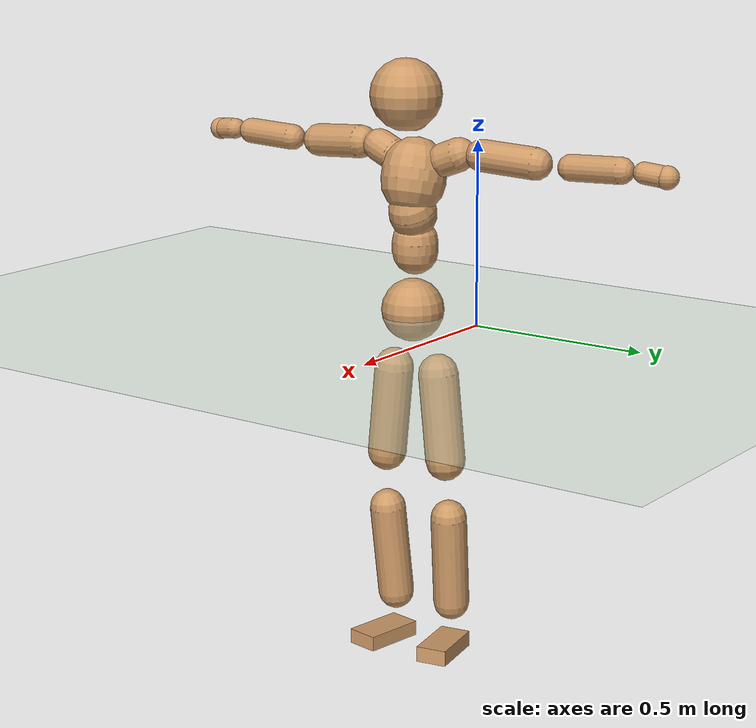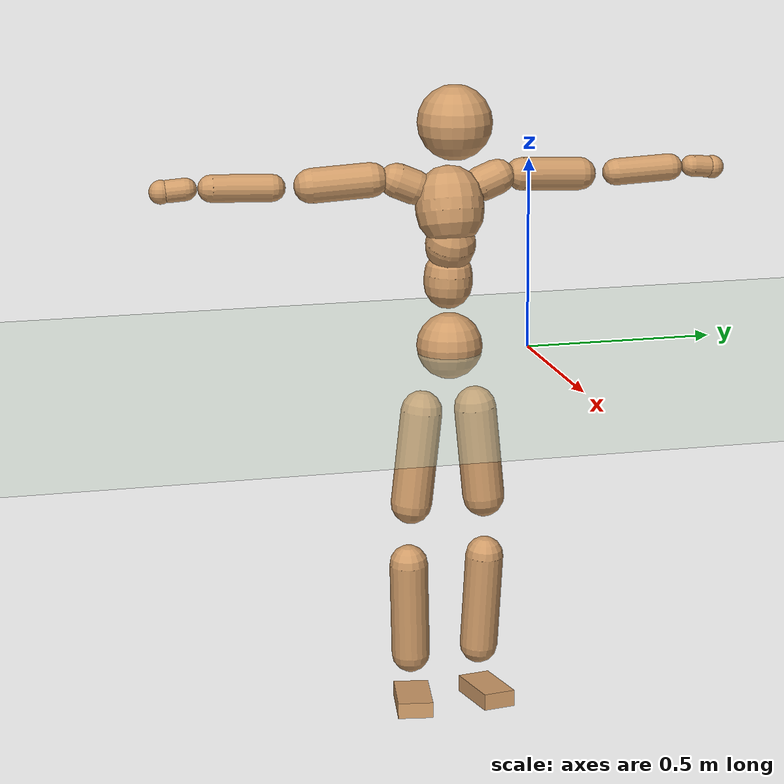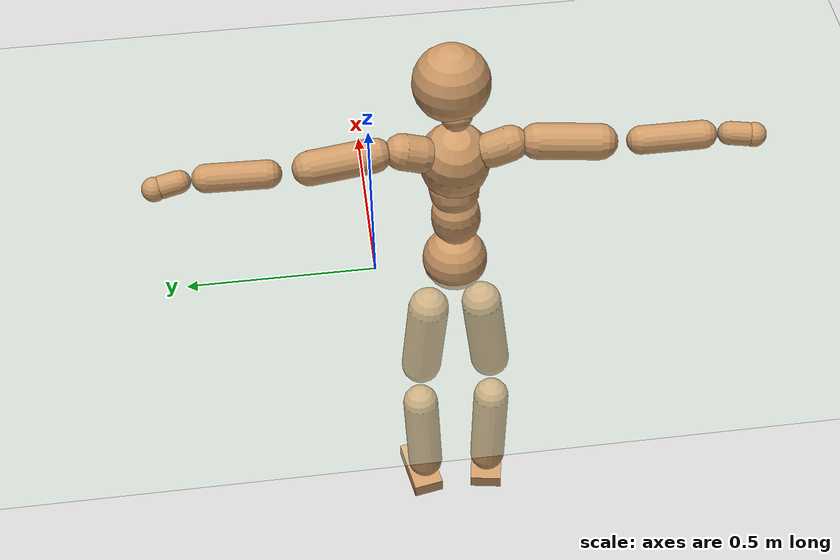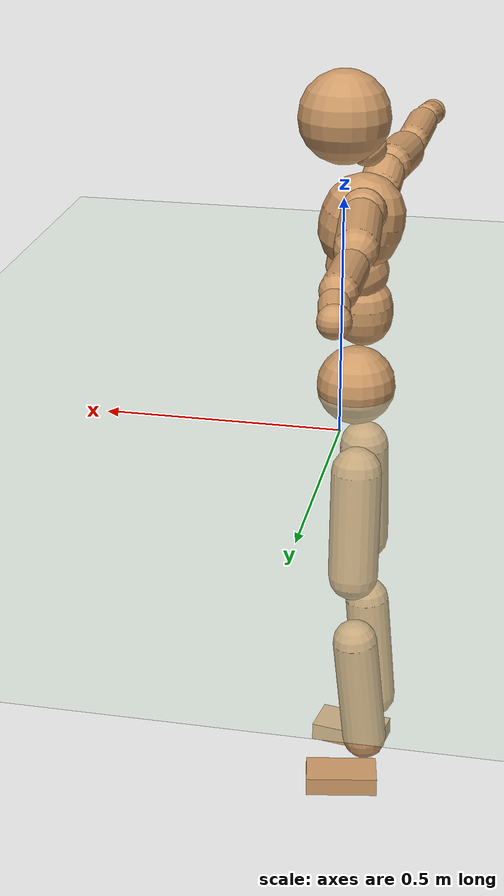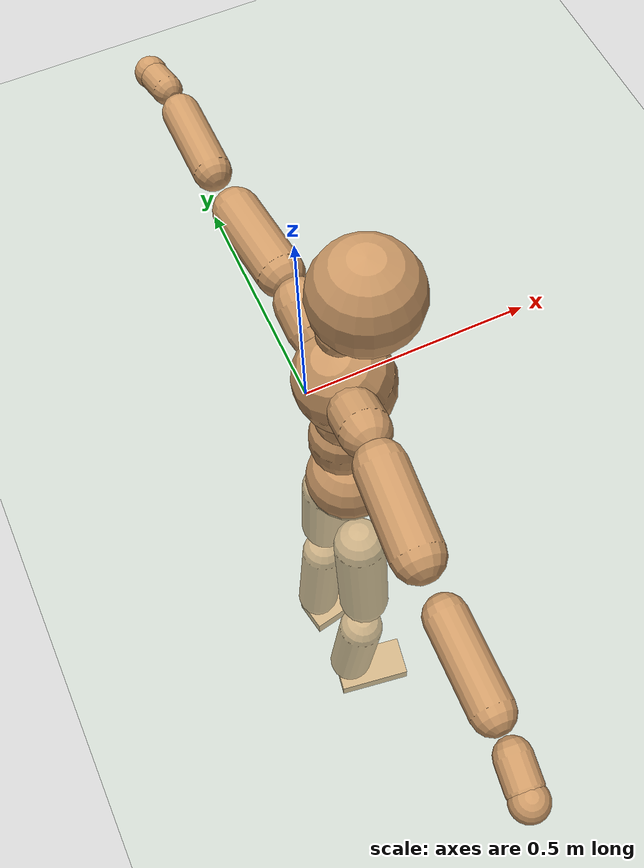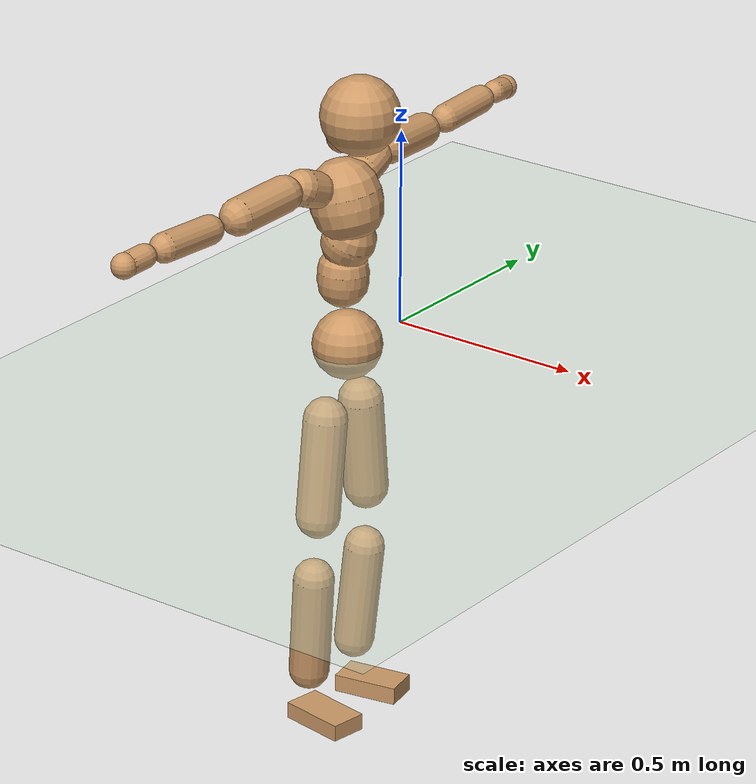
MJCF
<mujoco model="humanoid">
  <compiler coordinate="local" angle="radian"/>
  <default>
    <joint damping="0.0" armature="0.01" stiffness="0.0" limited="true"/>
    <geom conaffinity="1" condim="3" contype="7" margin="0.001" rgba="0.8 0.6 .4 1"/>
  </default>
  <asset>
    <texture type="skybox" builtin="gradient" rgb1=".4 .5 .6" rgb2="0 0 0" width="100" height="100"/>
    <texture builtin="flat" height="1278" mark="cross" markrgb="1 1 1" name="texgeom" random="0.01" rgb1="0.8 0.6 0.4" rgb2="0.8 0.6 0.4" type="cube" width="127"/>
    <texture builtin="checker" height="100" name="texplane" rgb1="0 0 0" rgb2="0.8 0.8 0.8" type="2d" width="100"/>
    <material name="MatPlane" reflectance="0.5" shininess="1" specular="1" texrepeat="60 60" texture="texplane"/>
    <material name="geom" texture="texgeom" texuniform="true"/>
  </asset>
  <worldbody>
    <light cutoff="100" diffuse="1 1 1" dir="-0 0 -1.3" directional="true" exponent="1" pos="0 0 1.3" specular=".1 .1 .1"/>
    <geom conaffinity="1" condim="3" name="floor" pos="0 0 0" rgba="0.8 0.9 0.8 1" size="100 100 .2" type="plane" material="MatPlane"/>
    <body name="Pelvis" pos="-0.0012 -0.2134 0.015">
      <freejoint name="Pelvis"/>
      <geom type="sphere" contype="1" conaffinity="1" density="500" size="0.0867" pos="0.0000 0.0000 0.0000" name="Pelvis"/>
      <body name="L_Hip" pos="-0.0159 0.0663 -0.0932">
        <joint name="L_Hip_x" type="hinge" pos="0 0 0" axis="1 0 0" stiffness="800" damping="80" armature="0.02" range="-180.0000 180.0000"/>
        <joint name="L_Hip_y" type="hinge" pos="0 0 0" axis="0 1 0" stiffness="800" damping="80" armature="0.02" range="-180.0000 180.0000"/>
        <joint name="L_Hip_z" type="hinge" pos="0 0 0" axis="0 0 1" stiffness="800" damping="80" armature="0.02" range="-180.0000 180.0000"/>
        <geom type="capsule" contype="1" conaffinity="1" density="500" fromto="-0.0003 0.0079 -0.0820 -0.0014 0.0317 -0.3282" size="0.0556" name="L_Hip"/>
        <body name="L_Knee" pos="-0.0017 0.0397 -0.4102">
          <joint name="L_Knee_x" type="hinge" pos="0 0 0" axis="1 0 0" stiffness="800" damping="80" armature="0.02" range="-180.0000 180.0000"/>
          <joint name="L_Knee_y" type="hinge" pos="0 0 0" axis="0 1 0" stiffness="800" damping="80" armature="0.02" range="-180.0000 180.0000"/>
          <joint name="L_Knee_z" type="hinge" pos="0 0 0" axis="0 0 1" stiffness="800" damping="80" armature="0.02" range="-180.0000 180.0000"/>
          <geom type="capsule" contype="1" conaffinity="1" density="500" fromto="-0.0088 -0.0027 -0.0870 -0.0351 -0.0109 -0.3481" size="0.0506" name="L_Knee"/>
          <body name="L_Ankle" pos="-0.0439 -0.0136 -0.4352">
            <joint name="L_Ankle_x" type="hinge" pos="0 0 0" axis="1 0 0" stiffness="800" damping="80" armature="0.02" range="-180.0000 180.0000"/>
            <joint name="L_Ankle_y" type="hinge" pos="0 0 0" axis="0 1 0" stiffness="800" damping="80" armature="0.02" range="-180.0000 180.0000"/>
            <joint name="L_Ankle_z" type="hinge" pos="0 0 0" axis="0 0 1" stiffness="800" damping="80" armature="0.02" range="-180.0000 180.0000"/>
            <geom type="box" contype="1" conaffinity="1" density="500" pos="0.0603 0.0109 -0.0302" size="0.0829 0.0437 0.0222" quat="0.9960 0.0000 0.0000 0.0890" name="L_Ankle"/>
            <body name="L_Toe" pos="0.1205 0.0217 -0.0604">
              <joint name="L_Toe_x" type="hinge" pos="0 0 0" axis="1 0 0" stiffness="500" damping="50" armature="0.02" range="-180.0000 180.0000"/>
              <joint name="L_Toe_y" type="hinge" pos="0 0 0" axis="0 1 0" stiffness="500" damping="50" armature="0.02" range="-180.0000 180.0000"/>
              <joint name="L_Toe_z" type="hinge" pos="0 0 0" axis="0 0 1" stiffness="500" damping="50" armature="0.02" range="-180.0000 180.0000"/>
              <geom type="box" contype="1" conaffinity="1" density="500" pos="0.0000 0.0000 0.0295" size="0.0009 0.0022 0.0011" quat="0.9954 0.0000 0.0000 0.0954" name="L_Toe"/>
            </body>
          </body>
        </body>
      </body>
      <body name="R_Hip" pos="-0.0106 -0.0635 -0.0923">
        <joint name="R_Hip_x" type="hinge" pos="0 0 0" axis="1 0 0" stiffness="800" damping="80" armature="0.02" range="-180.0000 180.0000"/>
        <joint name="R_Hip_y" type="hinge" pos="0 0 0" axis="0 1 0" stiffness="800" damping="80" armature="0.02" range="-180.0000 180.0000"/>
        <joint name="R_Hip_z" type="hinge" pos="0 0 0" axis="0 0 1" stiffness="800" damping="80" armature="0.02" range="-180.0000 180.0000"/>
        <geom type="capsule" contype="1" conaffinity="1" density="500" fromto="-0.0009 -0.0093 -0.0837 -0.0036 -0.0370 -0.3347" size="0.0547" name="R_Hip"/>
        <body name="R_Knee" pos="-0.0045 -0.0463 -0.4183">
          <joint name="R_Knee_x" type="hinge" pos="0 0 0" axis="1 0 0" stiffness="800" damping="80" armature="0.02" range="-180.0000 180.0000"/>
          <joint name="R_Knee_y" type="hinge" pos="0 0 0" axis="0 1 0" stiffness="800" damping="80" armature="0.02" range="-180.0000 180.0000"/>
          <joint name="R_Knee_z" type="hinge" pos="0 0 0" axis="0 0 1" stiffness="800" damping="80" armature="0.02" range="-180.0000 180.0000"/>
          <geom type="capsule" contype="1" conaffinity="1" density="500" fromto="-0.0082 0.0035 -0.0871 -0.0327 0.0142 -0.3485" size="0.051" name="R_Knee"/>
          <body name="R_Ankle" pos="-0.0408 0.0177 -0.4357">
            <joint name="R_Ankle_x" type="hinge" pos="0 0 0" axis="1 0 0" stiffness="800" damping="80" armature="0.02" range="-180.0000 180.0000"/>
            <joint name="R_Ankle_y" type="hinge" pos="0 0 0" axis="0 1 0" stiffness="800" damping="80" armature="0.02" range="-180.0000 180.0000"/>
            <joint name="R_Ankle_z" type="hinge" pos="0 0 0" axis="0 0 1" stiffness="800" damping="80" armature="0.02" range="-180.0000 180.0000"/>
            <geom type="box" contype="1" conaffinity="1" density="500" pos="0.0620 -0.0102 -0.0258" size="0.0863 0.0465 0.0211" quat="0.9967 0.0000 0.0000 -0.0814" name="R_Ankle"/>
            <body name="R_Toe" pos="0.1241 -0.0204 -0.0516">
              <joint name="R_Toe_x" type="hinge" pos="0 0 0" axis="1 0 0" stiffness="500" damping="50" armature="0.02" range="-180.0000 180.0000"/>
              <joint name="R_Toe_y" type="hinge" pos="0 0 0" axis="0 1 0" stiffness="500" damping="50" armature="0.02" range="-180.0000 180.0000"/>
              <joint name="R_Toe_z" type="hinge" pos="0 0 0" axis="0 0 1" stiffness="500" damping="50" armature="0.02" range="-180.0000 180.0000"/>
              <geom type="box" contype="1" conaffinity="1" density="500" pos="0.0000 0.0000 0.0280" size="0.0009 0.0022 0.0012" quat="0.9974 0.0000 0.0000 -0.0724" name="R_Toe"/>
            </body>
          </body>
        </body>
      </body>
      <body name="Torso" pos="-0.0136 -0.0024 0.1064">
        <joint name="Torso_x" type="hinge" pos="0 0 0" axis="1 0 0" stiffness="1000" damping="100" armature="0.02" range="-180.0000 180.0000"/>
        <joint name="Torso_y" type="hinge" pos="0 0 0" axis="0 1 0" stiffness="1000" damping="100" armature="0.02" range="-180.0000 180.0000"/>
        <joint name="Torso_z" type="hinge" pos="0 0 0" axis="0 0 1" stiffness="1000" damping="100" armature="0.02" range="-180.0000 180.0000"/>
        <geom type="capsule" contype="1" conaffinity="1" density="500" fromto="0.0020 0.0025 0.0822 0.0013 0.0017 0.0548" size="0.0635" name="Torso"/>
        <body name="Spine" pos="0.0034 0.0042 0.137">
          <joint name="Spine_x" type="hinge" pos="0 0 0" axis="1 0 0" stiffness="1000" damping="100" armature="0.02" range="-180.0000 180.0000"/>
          <joint name="Spine_y" type="hinge" pos="0 0 0" axis="0 1 0" stiffness="1000" damping="100" armature="0.02" range="-180.0000 180.0000"/>
          <joint name="Spine_z" type="hinge" pos="0 0 0" axis="0 0 1" stiffness="1000" damping="100" armature="0.02" range="-180.0000 180.0000"/>
          <geom type="capsule" contype="1" conaffinity="1" density="500" fromto="0.0153 0.0008 0.0314 0.0102 0.0005 0.0209" size="0.0657" name="Spine"/>
          <body name="Chest" pos="0.0256 0.0013 0.0523">
            <joint name="Chest_x" type="hinge" pos="0 0 0" axis="1 0 0" stiffness="1000" damping="100" armature="0.02" range="-180.0000 180.0000"/>
            <joint name="Chest_y" type="hinge" pos="0 0 0" axis="0 1 0" stiffness="1000" damping="100" armature="0.02" range="-180.0000 180.0000"/>
            <joint name="Chest_z" type="hinge" pos="0 0 0" axis="0 0 1" stiffness="1000" damping="100" armature="0.02" range="-180.0000 180.0000"/>
            <geom type="capsule" contype="1" conaffinity="1" density="500" fromto="-0.0236 -0.0016 0.0904 -0.0158 -0.0011 0.0603" size="0.0893" name="Chest"/>
            <body name="Neck" pos="-0.0401 -0.0051 0.2191">
              <joint name="Neck_x" type="hinge" pos="0 0 0" axis="1 0 0" stiffness="500" damping="50" armature="0.02" range="-180.0000 180.0000"/>
              <joint name="Neck_y" type="hinge" pos="0 0 0" axis="0 1 0" stiffness="500" damping="50" armature="0.02" range="-180.0000 180.0000"/>
              <joint name="Neck_z" type="hinge" pos="0 0 0" axis="0 0 1" stiffness="500" damping="50" armature="0.02" range="-180.0000 180.0000"/>
              <geom type="capsule" contype="1" conaffinity="1" density="500" fromto="0.0121 0.0014 0.0157 0.0484 0.0057 0.0627" size="0.0398" name="Neck"/>
              <body name="Head" pos="0.0604 0.0071 0.0784">
                <joint name="Head_x" type="hinge" pos="0 0 0" axis="1 0 0" stiffness="500" damping="50" armature="0.02" range="-180.0000 180.0000"/>
                <joint name="Head_y" type="hinge" pos="0 0 0" axis="0 1 0" stiffness="500" damping="50" armature="0.02" range="-180.0000 180.0000"/>
                <joint name="Head_z" type="hinge" pos="0 0 0" axis="0 0 1" stiffness="500" damping="50" armature="0.02" range="-180.0000 180.0000"/>
                <geom type="sphere" contype="1" conaffinity="1" density="500" size="0.0975" pos="0.0000 0.0000 0.0000" name="Head"/>
              </body>
            </body>
            <body name="L_Thorax" pos="-0.037 0.0693 0.1171">
              <joint name="L_Thorax_x" type="hinge" pos="0 0 0" axis="1 0 0" stiffness="500" damping="50" armature="0.02" range="-180.0000 180.0000"/>
              <joint name="L_Thorax_y" type="hinge" pos="0 0 0" axis="0 1 0" stiffness="500" damping="50" armature="0.02" range="-180.0000 180.0000"/>
              <joint name="L_Thorax_z" type="hinge" pos="0 0 0" axis="0 0 1" stiffness="500" damping="50" armature="0.02" range="-180.0000 180.0000"/>
              <geom type="capsule" contype="1" conaffinity="1" density="500" fromto="-0.0009 0.0155 0.0060 -0.0037 0.0618 0.0239" size="0.0462" name="L_Thorax"/>
              <body name="L_Shoulder" pos="-0.0046 0.0773 0.0299">
                <joint name="L_Shoulder_x" type="hinge" pos="0 0 0" axis="1 0 0" stiffness="500" damping="50" armature="0.02" range="-720.0000 720.0000"/>
                <joint name="L_Shoulder_y" type="hinge" pos="0 0 0" axis="0 1 0" stiffness="500" damping="50" armature="0.02" range="-720.0000 720.0000"/>
                <joint name="L_Shoulder_z" type="hinge" pos="0 0 0" axis="0 0 1" stiffness="500" damping="50" armature="0.02" range="-720.0000 720.0000"/>
                <geom type="capsule" contype="1" conaffinity="1" density="500" fromto="-0.0050 0.0534 -0.0030 -0.0200 0.2135 -0.0121" size="0.0435" name="L_Shoulder"/>
                <body name="L_Elbow" pos="-0.025 0.2669 -0.0151">
                  <joint name="L_Elbow_x" type="hinge" pos="0 0 0" axis="1 0 0" stiffness="500" damping="50" armature="0.02" range="-720.0000 720.0000"/>
                  <joint name="L_Elbow_y" type="hinge" pos="0 0 0" axis="0 1 0" stiffness="500" damping="50" armature="0.02" range="-720.0000 720.0000"/>
                  <joint name="L_Elbow_z" type="hinge" pos="0 0 0" axis="0 0 1" stiffness="500" damping="50" armature="0.02" range="-720.0000 720.0000"/>
                  <geom type="capsule" contype="1" conaffinity="1" density="500" fromto="-0.0006 0.0492 0.0020 -0.0023 0.1967 0.0081" size="0.0355" name="L_Elbow"/>
                  <body name="L_Wrist" pos="-0.0029 0.2459 0.0101">
                    <joint name="L_Wrist_x" type="hinge" pos="0 0 0" axis="1 0 0" stiffness="300" damping="30" armature="0.02" range="-180.0000 180.0000"/>
                    <joint name="L_Wrist_y" type="hinge" pos="0 0 0" axis="0 1 0" stiffness="300" damping="30" armature="0.02" range="-180.0000 180.0000"/>
                    <joint name="L_Wrist_z" type="hinge" pos="0 0 0" axis="0 0 1" stiffness="300" damping="30" armature="0.02" range="-180.0000 180.0000"/>
                    <geom type="capsule" contype="1" conaffinity="1" density="500" fromto="-0.0026 0.0153 -0.0019 -0.0104 0.0611 -0.0075" size="0.0285" name="L_Wrist"/>
                    <body name="L_Hand" pos="-0.013 0.0764 -0.0094">
                      <joint name="L_Hand_x" type="hinge" pos="0 0 0" axis="1 0 0" stiffness="300" damping="30" armature="0.02" range="-180.0000 180.0000"/>
                      <joint name="L_Hand_y" type="hinge" pos="0 0 0" axis="0 1 0" stiffness="300" damping="30" armature="0.02" range="-180.0000 180.0000"/>
                      <joint name="L_Hand_z" type="hinge" pos="0 0 0" axis="0 0 1" stiffness="300" damping="30" armature="0.02" range="-180.0000 180.0000"/>
                      <geom type="sphere" contype="1" conaffinity="1" density="500" size="0.0307" pos="0.0000 0.0000 0.0000" name="L_Hand"/>
                    </body>
                  </body>
                </body>
              </body>
            </body>
            <body name="R_Thorax" pos="-0.0411 -0.0722 0.1158">
              <joint name="R_Thorax_x" type="hinge" pos="0 0 0" axis="1 0 0" stiffness="500" damping="50" armature="0.02" range="-180.0000 180.0000"/>
              <joint name="R_Thorax_y" type="hinge" pos="0 0 0" axis="0 1 0" stiffness="500" damping="50" armature="0.02" range="-180.0000 180.0000"/>
              <joint name="R_Thorax_z" type="hinge" pos="0 0 0" axis="0 0 1" stiffness="500" damping="50" armature="0.02" range="-180.0000 180.0000"/>
              <geom type="capsule" contype="1" conaffinity="1" density="500" fromto="-0.0011 -0.0158 0.0066 -0.0043 -0.0634 0.0266" size="0.0452" name="R_Thorax"/>
              <body name="R_Shoulder" pos="-0.0054 -0.0792 0.0332">
                <joint name="R_Shoulder_x" type="hinge" pos="0 0 0" axis="1 0 0" stiffness="500" damping="50" armature="0.02" range="-720.0000 720.0000"/>
                <joint name="R_Shoulder_y" type="hinge" pos="0 0 0" axis="0 1 0" stiffness="500" damping="50" armature="0.02" range="-720.0000 720.0000"/>
                <joint name="R_Shoulder_z" type="hinge" pos="0 0 0" axis="0 0 1" stiffness="500" damping="50" armature="0.02" range="-720.0000 720.0000"/>
                <geom type="capsule" contype="1" conaffinity="1" density="500" fromto="-0.0038 -0.0512 -0.0034 -0.0153 -0.2049 -0.0136" size="0.0457" name="R_Shoulder"/>
                <body name="R_Elbow" pos="-0.0191 -0.2561 -0.017">
                  <joint name="R_Elbow_x" type="hinge" pos="0 0 0" axis="1 0 0" stiffness="500" damping="50" armature="0.02" range="-720.0000 720.0000"/>
                  <joint name="R_Elbow_y" type="hinge" pos="0 0 0" axis="0 1 0" stiffness="500" damping="50" armature="0.02" range="-720.0000 720.0000"/>
                  <joint name="R_Elbow_z" type="hinge" pos="0 0 0" axis="0 0 1" stiffness="500" damping="50" armature="0.02" range="-720.0000 720.0000"/>
                  <geom type="capsule" contype="1" conaffinity="1" density="500" fromto="-0.0017 -0.0512 0.0016 -0.0067 -0.2050 0.0064" size="0.0361" name="R_Elbow"/>
                  <body name="R_Wrist" pos="-0.0083 -0.2562 0.008">
                    <joint name="R_Wrist_x" type="hinge" pos="0 0 0" axis="1 0 0" stiffness="300" damping="30" armature="0.02" range="-180.0000 180.0000"/>
                    <joint name="R_Wrist_y" type="hinge" pos="0 0 0" axis="0 1 0" stiffness="300" damping="30" armature="0.02" range="-180.0000 180.0000"/>
                    <joint name="R_Wrist_z" type="hinge" pos="0 0 0" axis="0 0 1" stiffness="300" damping="30" armature="0.02" range="-180.0000 180.0000"/>
                    <geom type="capsule" contype="1" conaffinity="1" density="500" fromto="-0.0020 -0.0155 -0.0014 -0.0079 -0.0619 -0.0056" size="0.0294" name="R_Wrist"/>
                    <body name="R_Hand" pos="-0.0098 -0.0774 -0.007">
                      <joint name="R_Hand_x" type="hinge" pos="0 0 0" axis="1 0 0" stiffness="300" damping="30" armature="0.02" range="-180.0000 180.0000"/>
                      <joint name="R_Hand_y" type="hinge" pos="0 0 0" axis="0 1 0" stiffness="300" damping="30" armature="0.02" range="-180.0000 180.0000"/>
                      <joint name="R_Hand_z" type="hinge" pos="0 0 0" axis="0 0 1" stiffness="300" damping="30" armature="0.02" range="-180.0000 180.0000"/>
                      <geom type="sphere" contype="1" conaffinity="1" density="500" size="0.0310" pos="0.0000 0.0000 0.0000" name="R_Hand"/>
                    </body>
                  </body>
                </body>
              </body>
            </body>
          </body>
        </body>
      </body>
    </body>
  </worldbody>
  <actuator>
    <motor name="L_Hip_x" joint="L_Hip_x" gear="500"/>
    <motor name="L_Hip_y" joint="L_Hip_y" gear="500"/>
    <motor name="L_Hip_z" joint="L_Hip_z" gear="500"/>
    <motor name="L_Knee_x" joint="L_Knee_x" gear="500"/>
    <motor name="L_Knee_y" joint="L_Knee_y" gear="500"/>
    <motor name="L_Knee_z" joint="L_Knee_z" gear="500"/>
    <motor name="L_Ankle_x" joint="L_Ankle_x" gear="500"/>
    <motor name="L_Ankle_y" joint="L_Ankle_y" gear="500"/>
    <motor name="L_Ankle_z" joint="L_Ankle_z" gear="500"/>
    <motor name="L_Toe_x" joint="L_Toe_x" gear="500"/>
    <motor name="L_Toe_y" joint="L_Toe_y" gear="500"/>
    <motor name="L_Toe_z" joint="L_Toe_z" gear="500"/>
    <motor name="R_Hip_x" joint="R_Hip_x" gear="500"/>
    <motor name="R_Hip_y" joint="R_Hip_y" gear="500"/>
    <motor name="R_Hip_z" joint="R_Hip_z" gear="500"/>
    <motor name="R_Knee_x" joint="R_Knee_x" gear="500"/>
    <motor name="R_Knee_y" joint="R_Knee_y" gear="500"/>
    <motor name="R_Knee_z" joint="R_Knee_z" gear="500"/>
    <motor name="R_Ankle_x" joint="R_Ankle_x" gear="500"/>
    <motor name="R_Ankle_y" joint="R_Ankle_y" gear="500"/>
    <motor name="R_Ankle_z" joint="R_Ankle_z" gear="500"/>
    <motor name="R_Toe_x" joint="R_Toe_x" gear="500"/>
    <motor name="R_Toe_y" joint="R_Toe_y" gear="500"/>
    <motor name="R_Toe_z" joint="R_Toe_z" gear="500"/>
    <motor name="Torso_x" joint="Torso_x" gear="500"/>
    <motor name="Torso_y" joint="Torso_y" gear="500"/>
    <motor name="Torso_z" joint="Torso_z" gear="500"/>
    <motor name="Spine_x" joint="Spine_x" gear="500"/>
    <motor name="Spine_y" joint="Spine_y" gear="500"/>
    <motor name="Spine_z" joint="Spine_z" gear="500"/>
    <motor name="Chest_x" joint="Chest_x" gear="500"/>
    <motor name="Chest_y" joint="Chest_y" gear="500"/>
    <motor name="Chest_z" joint="Chest_z" gear="500"/>
    <motor name="Neck_x" joint="Neck_x" gear="500"/>
    <motor name="Neck_y" joint="Neck_y" gear="500"/>
    <motor name="Neck_z" joint="Neck_z" gear="500"/>
    <motor name="Head_x" joint="Head_x" gear="500"/>
    <motor name="Head_y" joint="Head_y" gear="500"/>
    <motor name="Head_z" joint="Head_z" gear="500"/>
    <motor name="L_Thorax_x" joint="L_Thorax_x" gear="500"/>
    <motor name="L_Thorax_y" joint="L_Thorax_y" gear="500"/>
    <motor name="L_Thorax_z" joint="L_Thorax_z" gear="500"/>
    <motor name="L_Shoulder_x" joint="L_Shoulder_x" gear="500"/>
    <motor name="L_Shoulder_y" joint="L_Shoulder_y" gear="500"/>
    <motor name="L_Shoulder_z" joint="L_Shoulder_z" gear="500"/>
    <motor name="L_Elbow_x" joint="L_Elbow_x" gear="500"/>
    <motor name="L_Elbow_y" joint="L_Elbow_y" gear="500"/>
    <motor name="L_Elbow_z" joint="L_Elbow_z" gear="500"/>
    <motor name="L_Wrist_x" joint="L_Wrist_x" gear="500"/>
    <motor name="L_Wrist_y" joint="L_Wrist_y" gear="500"/>
    <motor name="L_Wrist_z" joint="L_Wrist_z" gear="500"/>
    <motor name="L_Hand_x" joint="L_Hand_x" gear="500"/>
    <motor name="L_Hand_y" joint="L_Hand_y" gear="500"/>
    <motor name="L_Hand_z" joint="L_Hand_z" gear="500"/>
    <motor name="R_Thorax_x" joint="R_Thorax_x" gear="500"/>
    <motor name="R_Thorax_y" joint="R_Thorax_y" gear="500"/>
    <motor name="R_Thorax_z" joint="R_Thorax_z" gear="500"/>
    <motor name="R_Shoulder_x" joint="R_Shoulder_x" gear="500"/>
    <motor name="R_Shoulder_y" joint="R_Shoulder_y" gear="500"/>
    <motor name="R_Shoulder_z" joint="R_Shoulder_z" gear="500"/>
    <motor name="R_Elbow_x" joint="R_Elbow_x" gear="500"/>
    <motor name="R_Elbow_y" joint="R_Elbow_y" gear="500"/>
    <motor name="R_Elbow_z" joint="R_Elbow_z" gear="500"/>
    <motor name="R_Wrist_x" joint="R_Wrist_x" gear="500"/>
    <motor name="R_Wrist_y" joint="R_Wrist_y" gear="500"/>
    <motor name="R_Wrist_z" joint="R_Wrist_z" gear="500"/>
    <motor name="R_Hand_x" joint="R_Hand_x" gear="500"/>
    <motor name="R_Hand_y" joint="R_Hand_y" gear="500"/>
    <motor name="R_Hand_z" joint="R_Hand_z" gear="500"/>
  </actuator>
  <contact>
    <exclude body1="Torso" body2="Chest"/>
    <exclude body1="Head" body2="Chest"/>
    <exclude body1="R_Knee" body2="R_Toe"/>
    <exclude body1="R_Knee" body2="L_Ankle"/>
    <exclude body1="R_Knee" body2="L_Toe"/>
    <exclude body1="L_Knee" body2="L_Toe"/>
    <exclude body1="L_Knee" body2="R_Ankle"/>
    <exclude body1="L_Knee" body2="R_Toe"/>
    <exclude body1="L_Shoulder" body2="Chest"/>
    <exclude body1="R_Shoulder" body2="Chest"/>
  </contact>
  <sensor/>
  <size njmax="700" nconmax="700"/>
</mujoco>
